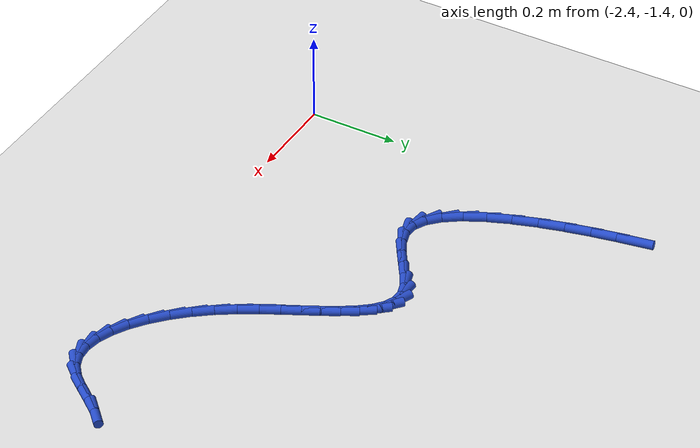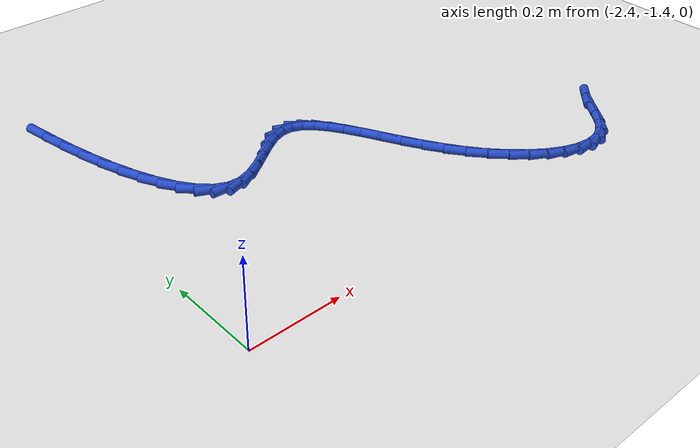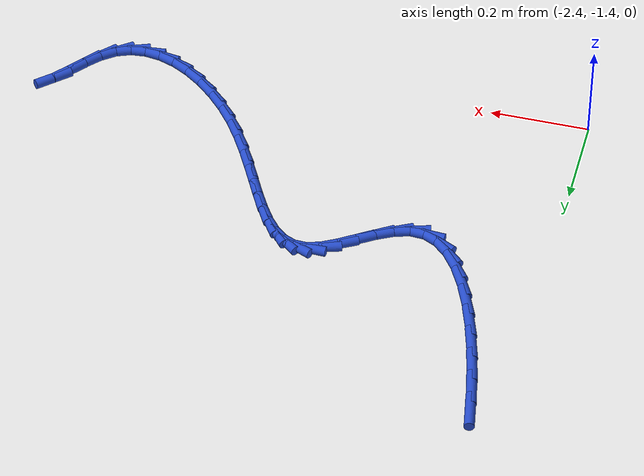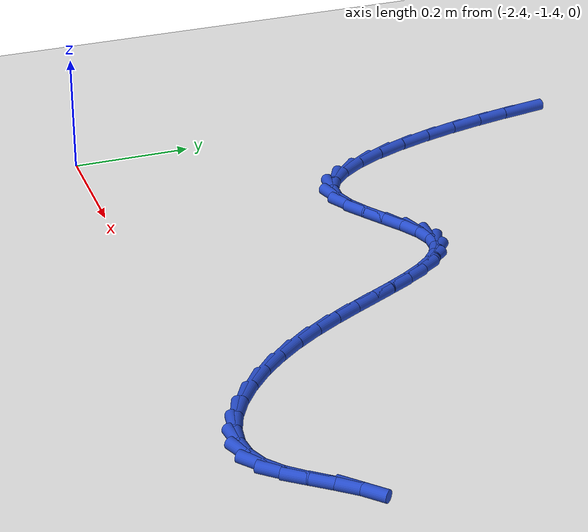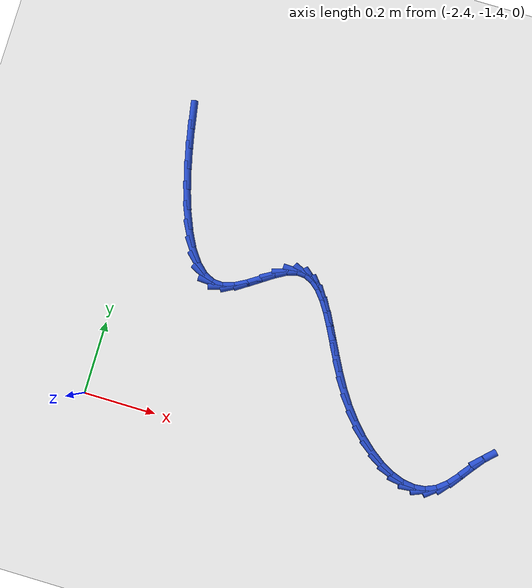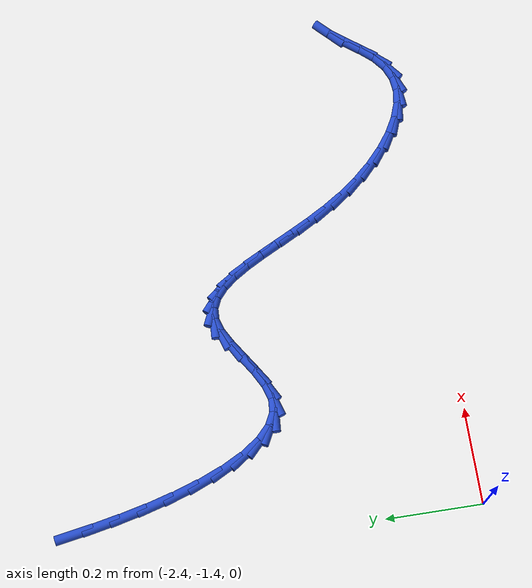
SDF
<sdf version="1.6">
 <world name="default">
  <model name="ground_plane">
   <static>1</static>
   <link name="link">
    <collision name="collision">
     <geometry><plane><normal>0 0 1</normal><size>100 100</size></plane></geometry>
     <surface><friction><ode><mu>100</mu><mu2>50</mu2></ode></friction></surface>
    </collision>
    <visual name="visual">
     <cast_shadows>0</cast_shadows>
     <geometry><plane><normal>0 0 1</normal><size>100 100</size></plane></geometry>
     <material>
      <script><uri>file://media/materials/scripts/gazebo.material</uri><name>Gazebo/WhiteGlow</name></script>
     </material>
    </visual>
   </link>
  </model>
  <model name="line">
   <link name="link_150">
    <pose>-2.338546762789542 -0.584289710826405 0.01 0 1.57 -1.3963307833088043</pose>
    <collision name="collision">
     <geometry><cylinder><radius>0.01</radius><length>0.08</length></cylinder></geometry>
    </collision>
    <visual name="visual">
     <material>
      <script><name>Gazebo/Blue</name><uri>file://media/materials/scripts/gazebo.material</uri></script>
     </material>
     <geometry><cylinder><radius>0.01</radius><length>0.08</length></cylinder></geometry>
    </visual>
   </link>
   <link name="link_151">
    <pose>-2.3289365020509827 -0.6388136912219136 0.01 0 1.57 -1.366216140900219</pose>
    <collision name="collision">
     <geometry><cylinder><radius>0.01</radius><length>0.08</length></cylinder></geometry>
    </collision>
    <visual name="visual">
     <material>
      <script><name>Gazebo/Blue</name><uri>file://media/materials/scripts/gazebo.material</uri></script>
     </material>
     <geometry><cylinder><radius>0.01</radius><length>0.08</length></cylinder></geometry>
    </visual>
   </link>
   <link name="link_152">
    <pose>-2.3173436878958427 -0.6946872817258278 0.01 0 1.57 -1.331933378749303</pose>
    <collision name="collision">
     <geometry><cylinder><radius>0.01</radius><length>0.08</length></cylinder></geometry>
    </collision>
    <visual name="visual">
     <material>
      <script><name>Gazebo/Blue</name><uri>file://media/materials/scripts/gazebo.material</uri></script>
     </material>
     <geometry><cylinder><radius>0.01</radius><length>0.08</length></cylinder></geometry>
    </visual>
   </link>
   <link name="link_153">
    <pose>-2.3037674077722303 -0.7504393028253997 0.01 0 1.57 -1.2910193099442615</pose>
    <collision name="collision">
     <geometry><cylinder><radius>0.01</radius><length>0.08</length></cylinder></geometry>
    </collision>
    <visual name="visual">
     <material>
      <script><name>Gazebo/Blue</name><uri>file://media/materials/scripts/gazebo.material</uri></script>
     </material>
     <geometry><cylinder><radius>0.01</radius><length>0.08</length></cylinder></geometry>
    </visual>
   </link>
   <link name="link_154">
    <pose>-2.288206749128256 -0.8045985750078819 0.01 0 1.57 -1.2400166464151179</pose>
    <collision name="collision">
     <geometry><cylinder><radius>0.01</radius><length>0.08</length></cylinder></geometry>
    </collision>
    <visual name="visual">
     <material>
      <script><name>Gazebo/Blue</name><uri>file://media/materials/scripts/gazebo.material</uri></script>
     </material>
     <geometry><cylinder><radius>0.01</radius><length>0.08</length></cylinder></geometry>
    </visual>
   </link>
   <link name="link_155">
    <pose>-2.2706607994120294 -0.8556939187605259 0.01 0 1.57 -1.1735909816878345</pose>
    <collision name="collision">
     <geometry><cylinder><radius>0.01</radius><length>0.08</length></cylinder></geometry>
    </collision>
    <visual name="visual">
     <material>
      <script><name>Gazebo/Blue</name><uri>file://media/materials/scripts/gazebo.material</uri></script>
     </material>
     <geometry><cylinder><radius>0.01</radius><length>0.08</length></cylinder></geometry>
    </visual>
   </link>
   <link name="link_156">
    <pose>-2.2511286460716597 -0.9022541545705842 0.01 0 1.57 -1.0829435729089512</pose>
    <collision name="collision">
     <geometry><cylinder><radius>0.01</radius><length>0.08</length></cylinder></geometry>
    </collision>
    <visual name="visual">
     <material>
      <script><name>Gazebo/Blue</name><uri>file://media/materials/scripts/gazebo.material</uri></script>
     </material>
     <geometry><cylinder><radius>0.01</radius><length>0.08</length></cylinder></geometry>
    </visual>
   </link>
   <link name="link_157">
    <pose>-2.229609376555256 -0.9428081029253087 0.01 0 1.57 -0.9529283494478165</pose>
    <collision name="collision">
     <geometry><cylinder><radius>0.01</radius><length>0.08</length></cylinder></geometry>
    </collision>
    <visual name="visual">
     <material>
      <script><name>Gazebo/Blue</name><uri>file://media/materials/scripts/gazebo.material</uri></script>
     </material>
     <geometry><cylinder><radius>0.01</radius><length>0.08</length></cylinder></geometry>
    </visual>
   </link>
   <link name="link_158">
    <pose>-2.206102078310929 -0.9758845843119519 0.01 0 1.57 -0.7578297312290492</pose>
    <collision name="collision">
     <geometry><cylinder><radius>0.01</radius><length>0.08</length></cylinder></geometry>
    </collision>
    <visual name="visual">
     <material>
      <script><name>Gazebo/Blue</name><uri>file://media/materials/scripts/gazebo.material</uri></script>
     </material>
     <geometry><cylinder><radius>0.01</radius><length>0.08</length></cylinder></geometry>
    </visual>
   </link>
   <link name="link_159">
    <pose>-2.1806058387867866 -1.000012419217766 0.01 0 1.57 -0.46262729293414745</pose>
    <collision name="collision">
     <geometry><cylinder><radius>0.01</radius><length>0.08</length></cylinder></geometry>
    </collision>
    <visual name="visual">
     <material>
      <script><name>Gazebo/Blue</name><uri>file://media/materials/scripts/gazebo.material</uri></script>
     </material>
     <geometry><cylinder><radius>0.01</radius><length>0.08</length></cylinder></geometry>
    </visual>
   </link>
   <link name="link_160">
    <pose>-2.1531197454309394 -1.0137204281300027 0.01 0 1.57 -0.06227002292778532</pose>
    <collision name="collision">
     <geometry><cylinder><radius>0.01</radius><length>0.08</length></cylinder></geometry>
    </collision>
    <visual name="visual">
     <material>
      <script><name>Gazebo/Blue</name><uri>file://media/materials/scripts/gazebo.material</uri></script>
     </material>
     <geometry><cylinder><radius>0.01</radius><length>0.08</length></cylinder></geometry>
    </visual>
   </link>
   <link name="link_161">
    <pose>-2.1236460241078823 -1.0155581333149046 0.01 0 1.57 0.2998370911299182</pose>
    <collision name="collision">
     <geometry><cylinder><radius>0.01</radius><length>0.08</length></cylinder></geometry>
    </collision>
    <visual name="visual">
     <material>
      <script><name>Gazebo/Blue</name><uri>file://media/materials/scripts/gazebo.material</uri></script>
     </material>
     <geometry><cylinder><radius>0.01</radius><length>0.08</length></cylinder></geometry>
    </visual>
   </link>
   <link name="link_162">
    <pose>-2.09246640097438 -1.005918710833152 0.01 0 1.57 0.49788476000446097</pose>
    <collision name="collision">
     <geometry><cylinder><radius>0.01</radius><length>0.08</length></cylinder></geometry>
    </collision>
    <visual name="visual">
     <material>
      <script><name>Gazebo/Blue</name><uri>file://media/materials/scripts/gazebo.material</uri></script>
     </material>
     <geometry><cylinder><radius>0.01</radius><length>0.08</length></cylinder></geometry>
    </visual>
   </link>
   <link name="link_163">
    <pose>-2.060358461245716 -0.9884661470451886 0.01 0 1.57 0.5835615641764305</pose>
    <collision name="collision">
     <geometry><cylinder><radius>0.01</radius><length>0.08</length></cylinder></geometry>
    </collision>
    <visual name="visual">
     <material>
      <script><name>Gazebo/Blue</name><uri>file://media/materials/scripts/gazebo.material</uri></script>
     </material>
     <geometry><cylinder><radius>0.01</radius><length>0.08</length></cylinder></geometry>
    </visual>
   </link>
   <link name="link_164">
    <pose>-2.028150710552537 -0.9672003120997504 0.01 0 1.57 0.590049487459638</pose>
    <collision name="collision">
     <geometry><cylinder><radius>0.01</radius><length>0.08</length></cylinder></geometry>
    </collision>
    <visual name="visual">
     <material>
      <script><name>Gazebo/Blue</name><uri>file://media/materials/scripts/gazebo.material</uri></script>
     </material>
     <geometry><cylinder><radius>0.01</radius><length>0.08</length></cylinder></geometry>
    </visual>
   </link>
   <link name="link_165">
    <pose>-1.9966716545254843 -0.9461210761455717 0.01 0 1.57 0.5139550766217005</pose>
    <collision name="collision">
     <geometry><cylinder><radius>0.01</radius><length>0.08</length></cylinder></geometry>
    </collision>
    <visual name="visual">
     <material>
      <script><name>Gazebo/Blue</name><uri>file://media/materials/scripts/gazebo.material</uri></script>
     </material>
     <geometry><cylinder><radius>0.01</radius><length>0.08</length></cylinder></geometry>
    </visual>
   </link>
   <link name="link_166">
    <pose>-1.966749798795206 -0.9292283093313891 0.01 0 1.57 0.3082185128953986</pose>
    <collision name="collision">
     <geometry><cylinder><radius>0.01</radius><length>0.08</length></cylinder></geometry>
    </collision>
    <visual name="visual">
     <material>
      <script><name>Gazebo/Blue</name><uri>file://media/materials/scripts/gazebo.material</uri></script>
     </material>
     <geometry><cylinder><radius>0.01</radius><length>0.08</length></cylinder></geometry>
    </visual>
   </link>
   <link name="link_167">
    <pose>-1.9391967147075628 -0.9204563899471563 0.01 0 1.57 -0.04294045888686191</pose>
    <collision name="collision">
     <geometry><cylinder><radius>0.01</radius><length>0.08</length></cylinder></geometry>
    </collision>
    <visual name="visual">
     <material>
      <script><name>Gazebo/Blue</name><uri>file://media/materials/scripts/gazebo.material</uri></script>
     </material>
     <geometry><cylinder><radius>0.01</radius><length>0.08</length></cylinder></geometry>
    </visual>
   </link>
   <link name="link_168">
    <pose>-1.9142521400585721 -0.9215281802622971 0.01 0 1.57 -0.4114346843406026</pose>
    <collision name="collision">
     <geometry><cylinder><radius>0.01</radius><length>0.08</length></cylinder></geometry>
    </collision>
    <visual name="visual">
     <material>
      <script><name>Gazebo/Blue</name><uri>file://media/materials/scripts/gazebo.material</uri></script>
     </material>
     <geometry><cylinder><radius>0.01</radius><length>0.08</length></cylinder></geometry>
    </visual>
   </link>
   <link name="link_169">
    <pose>-1.8914594674813732 -0.9314734888001949 0.01 0 1.57 -0.6966725712380322</pose>
    <collision name="collision">
     <geometry><cylinder><radius>0.01</radius><length>0.08</length></cylinder></geometry>
    </collision>
    <visual name="visual">
     <material>
      <script><name>Gazebo/Blue</name><uri>file://media/materials/scripts/gazebo.material</uri></script>
     </material>
     <geometry><cylinder><radius>0.01</radius><length>0.08</length></cylinder></geometry>
    </visual>
   </link>
   <link name="link_170">
    <pose>-1.8703199496623242 -0.9491591515418998 0.01 0 1.57 -0.882381580382062</pose>
    <collision name="collision">
     <geometry><cylinder><radius>0.01</radius><length>0.08</length></cylinder></geometry>
    </collision>
    <visual name="visual">
     <material>
      <script><name>Gazebo/Blue</name><uri>file://media/materials/scripts/gazebo.material</uri></script>
     </material>
     <geometry><cylinder><radius>0.01</radius><length>0.08</length></cylinder></geometry>
    </visual>
   </link>
   <link name="link_171">
    <pose>-1.8503348392877839 -0.9734520044684623 0.01 0 1.57 -0.9948704496016576</pose>
    <collision name="collision">
     <geometry><cylinder><radius>0.01</radius><length>0.08</length></cylinder></geometry>
    </collision>
    <visual name="visual">
     <material>
      <script><name>Gazebo/Blue</name><uri>file://media/materials/scripts/gazebo.material</uri></script>
     </material>
     <geometry><cylinder><radius>0.01</radius><length>0.08</length></cylinder></geometry>
    </visual>
   </link>
   <link name="link_172">
    <pose>-1.8310053890441105 -1.0032188835609324 0.01 0 1.57 -1.0586979413955004</pose>
    <collision name="collision">
     <geometry><cylinder><radius>0.01</radius><length>0.08</length></cylinder></geometry>
    </collision>
    <visual name="visual">
     <material>
      <script><name>Gazebo/Blue</name><uri>file://media/materials/scripts/gazebo.material</uri></script>
     </material>
     <geometry><cylinder><radius>0.01</radius><length>0.08</length></cylinder></geometry>
    </visual>
   </link>
   <link name="link_173">
    <pose>-1.8118328516176634 -1.0373266248003612 0.01 0 1.57 -1.0889522037591588</pose>
    <collision name="collision">
     <geometry><cylinder><radius>0.01</radius><length>0.08</length></cylinder></geometry>
    </collision>
    <visual name="visual">
     <material>
      <script><name>Gazebo/Blue</name><uri>file://media/materials/scripts/gazebo.material</uri></script>
     </material>
     <geometry><cylinder><radius>0.01</radius><length>0.08</length></cylinder></geometry>
    </visual>
   </link>
   <link name="link_174">
    <pose>-1.7923184796948002 -1.0746420641677987 0.01 0 1.57 -1.0938349807475904</pose>
    <collision name="collision">
     <geometry><cylinder><radius>0.01</radius><length>0.08</length></cylinder></geometry>
    </collision>
    <visual name="visual">
     <material>
      <script><name>Gazebo/Blue</name><uri>file://media/materials/scripts/gazebo.material</uri></script>
     </material>
     <geometry><cylinder><radius>0.01</radius><length>0.08</length></cylinder></geometry>
    </visual>
   </link>
   <link name="link_175">
    <pose>-1.7719635259618791 -1.114032037644295 0.01 0 1.57 -1.0772893588706647</pose>
    <collision name="collision">
     <geometry><cylinder><radius>0.01</radius><length>0.08</length></cylinder></geometry>
    </collision>
    <visual name="visual">
     <material>
      <script><name>Gazebo/Blue</name><uri>file://media/materials/scripts/gazebo.material</uri></script>
     </material>
     <geometry><cylinder><radius>0.01</radius><length>0.08</length></cylinder></geometry>
    </visual>
   </link>
   <link name="link_176">
    <pose>-1.7502692431052609 -1.1543633812109 0.01 0 1.57 -1.0405383087606013</pose>
    <collision name="collision">
     <geometry><cylinder><radius>0.01</radius><length>0.08</length></cylinder></geometry>
    </collision>
    <visual name="visual">
     <material>
      <script><name>Gazebo/Blue</name><uri>file://media/materials/scripts/gazebo.material</uri></script>
     </material>
     <geometry><cylinder><radius>0.01</radius><length>0.08</length></cylinder></geometry>
    </visual>
   </link>
   <link name="link_177">
    <pose>-1.7267368838113009 -1.1945029308486657 0.01 0 1.57 -0.9829223610729075</pose>
    <collision name="collision">
     <geometry><cylinder><radius>0.01</radius><length>0.08</length></cylinder></geometry>
    </collision>
    <visual name="visual">
     <material>
      <script><name>Gazebo/Blue</name><uri>file://media/materials/scripts/gazebo.material</uri></script>
     </material>
     <geometry><cylinder><radius>0.01</radius><length>0.08</length></cylinder></geometry>
    </visual>
   </link>
   <link name="link_178">
    <pose>-1.7008677008605173 -1.233317522567364 0.01 0 1.57 -0.9064249418045982</pose>
    <collision name="collision">
     <geometry><cylinder><radius>0.01</radius><length>0.08</length></cylinder></geometry>
    </collision>
    <visual name="visual">
     <material>
      <script><name>Gazebo/Blue</name><uri>file://media/materials/scripts/gazebo.material</uri></script>
     </material>
     <geometry><cylinder><radius>0.01</radius><length>0.08</length></cylinder></geometry>
    </visual>
   </link>
   <link name="link_179">
    <pose>-1.6723508524288322 -1.2697313112993656 0.01 0 1.57 -0.8232409343861503</pose>
    <collision name="collision">
     <geometry><cylinder><radius>0.01</radius><length>0.08</length></cylinder></geometry>
    </collision>
    <visual name="visual">
     <material>
      <script><name>Gazebo/Blue</name><uri>file://media/materials/scripts/gazebo.material</uri></script>
     </material>
     <geometry><cylinder><radius>0.01</radius><length>0.08</length></cylinder></geometry>
    </visual>
   </link>
   <link name="link_180">
    <pose>-1.6416092814814103 -1.3028922867075303 0.01 0 1.57 -0.7325239664775708</pose>
    <collision name="collision">
     <geometry><cylinder><radius>0.01</radius><length>0.08</length></cylinder></geometry>
    </collision>
    <visual name="visual">
     <material>
      <script><name>Gazebo/Blue</name><uri>file://media/materials/scripts/gazebo.material</uri></script>
     </material>
     <geometry><cylinder><radius>0.01</radius><length>0.08</length></cylinder></geometry>
    </visual>
   </link>
   <link name="link_181">
    <pose>-1.6092450233079254 -1.33200306902594 0.01 0 1.57 -0.6284685405128603</pose>
    <collision name="collision">
     <geometry><cylinder><radius>0.01</radius><length>0.08</length></cylinder></geometry>
    </collision>
    <visual name="visual">
     <material>
      <script><name>Gazebo/Blue</name><uri>file://media/materials/scripts/gazebo.material</uri></script>
     </material>
     <geometry><cylinder><radius>0.01</radius><length>0.08</length></cylinder></geometry>
    </visual>
   </link>
   <link name="link_182">
    <pose>-1.5758601131980492 -1.356266278488675 0.01 0 1.57 -0.5034407356758902</pose>
    <collision name="collision">
     <geometry><cylinder><radius>0.01</radius><length>0.08</length></cylinder></geometry>
    </collision>
    <visual name="visual">
     <material>
      <script><name>Gazebo/Blue</name><uri>file://media/materials/scripts/gazebo.material</uri></script>
     </material>
     <geometry><cylinder><radius>0.01</radius><length>0.08</length></cylinder></geometry>
    </visual>
   </link>
   <link name="link_183">
    <pose>-1.5420565864414553 -1.3748845353298167 0.01 0 1.57 -0.3474681822392468</pose>
    <collision name="collision">
     <geometry><cylinder><radius>0.01</radius><length>0.08</length></cylinder></geometry>
    </collision>
    <visual name="visual">
     <material>
      <script><name>Gazebo/Blue</name><uri>file://media/materials/scripts/gazebo.material</uri></script>
     </material>
     <geometry><cylinder><radius>0.01</radius><length>0.08</length></cylinder></geometry>
    </visual>
   </link>
   <link name="link_184">
    <pose>-1.5084364783278157 -1.3870604597834457 0.01 0 1.57 -0.14921799360888388</pose>
    <collision name="collision">
     <geometry><cylinder><radius>0.01</radius><length>0.08</length></cylinder></geometry>
    </collision>
    <visual name="visual">
     <material>
      <script><name>Gazebo/Blue</name><uri>file://media/materials/scripts/gazebo.material</uri></script>
     </material>
     <geometry><cylinder><radius>0.01</radius><length>0.08</length></cylinder></geometry>
    </visual>
   </link>
   <link name="link_185">
    <pose>-1.4756018241468036 -1.3919966720836425 0.01 0 1.57 0.09828827966782999</pose>
    <collision name="collision">
     <geometry><cylinder><radius>0.01</radius><length>0.08</length></cylinder></geometry>
    </collision>
    <visual name="visual">
     <material>
      <script><name>Gazebo/Blue</name><uri>file://media/materials/scripts/gazebo.material</uri></script>
     </material>
     <geometry><cylinder><radius>0.01</radius><length>0.08</length></cylinder></geometry>
    </visual>
   </link>
   <link name="link_186">
    <pose>-1.4441546591880918 -1.3888957924644894 0.01 0 1.57 0.3849552873541218</pose>
    <collision name="collision">
     <geometry><cylinder><radius>0.01</radius><length>0.08</length></cylinder></geometry>
    </collision>
    <visual name="visual">
     <material>
      <script><name>Gazebo/Blue</name><uri>file://media/materials/scripts/gazebo.material</uri></script>
     </material>
     <geometry><cylinder><radius>0.01</radius><length>0.08</length></cylinder></geometry>
    </visual>
   </link>
   <link name="link_187">
    <pose>-1.4146970187413532 -1.3769604411600658 0.01 0 1.57 0.670178548583315</pose>
    <collision name="collision">
     <geometry><cylinder><radius>0.01</radius><length>0.08</length></cylinder></geometry>
    </collision>
    <visual name="visual">
     <material>
      <script><name>Gazebo/Blue</name><uri>file://media/materials/scripts/gazebo.material</uri></script>
     </material>
     <geometry><cylinder><radius>0.01</radius><length>0.08</length></cylinder></geometry>
    </visual>
   </link>
   <link name="link_188">
    <pose>-1.3877590439932108 -1.3556108884504634 0.01 0 1.57 0.8538624107033782</pose>
    <collision name="collision">
     <geometry><cylinder><radius>0.01</radius><length>0.08</length></cylinder></geometry>
    </collision>
    <visual name="visual">
     <material>
      <script><name>Gazebo/Blue</name><uri>file://media/materials/scripts/gazebo.material</uri></script>
     </material>
     <geometry><cylinder><radius>0.01</radius><length>0.08</length></cylinder></geometry>
    </visual>
   </link>
   <link name="link_189">
    <pose>-1.3629275446687203 -1.3271232179204304 0.01 0 1.57 0.9212525565403603</pose>
    <collision name="collision">
     <geometry><cylinder><radius>0.01</radius><length>0.08</length></cylinder></geometry>
    </collision>
    <visual name="visual">
     <material>
      <script><name>Gazebo/Blue</name><uri>file://media/materials/scripts/gazebo.material</uri></script>
     </material>
     <geometry><cylinder><radius>0.01</radius><length>0.08</length></cylinder></geometry>
    </visual>
   </link>
   <link name="link_190">
    <pose>-1.3391254268584183 -1.2957833950570041 0.01 0 1.57 0.8966197043001674</pose>
    <collision name="collision">
     <geometry><cylinder><radius>0.01</radius><length>0.08</length></cylinder></geometry>
    </collision>
    <visual name="visual">
     <material>
      <script><name>Gazebo/Blue</name><uri>file://media/materials/scripts/gazebo.material</uri></script>
     </material>
     <geometry><cylinder><radius>0.01</radius><length>0.08</length></cylinder></geometry>
    </visual>
   </link>
   <link name="link_191">
    <pose>-1.3152617589271196 -1.2659192772620298 0.01 0 1.57 0.7659291786130067</pose>
    <collision name="collision">
     <geometry><cylinder><radius>0.01</radius><length>0.08</length></cylinder></geometry>
    </collision>
    <visual name="visual">
     <material>
      <script><name>Gazebo/Blue</name><uri>file://media/materials/scripts/gazebo.material</uri></script>
     </material>
     <geometry><cylinder><radius>0.01</radius><length>0.08</length></cylinder></geometry>
    </visual>
   </link>
  </model>
 </world>
</sdf>
